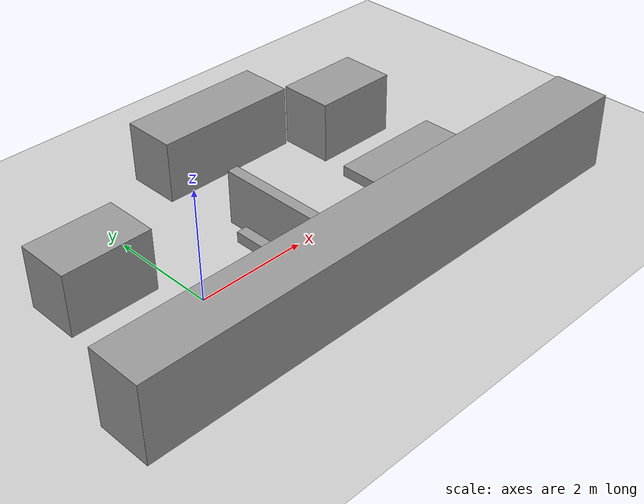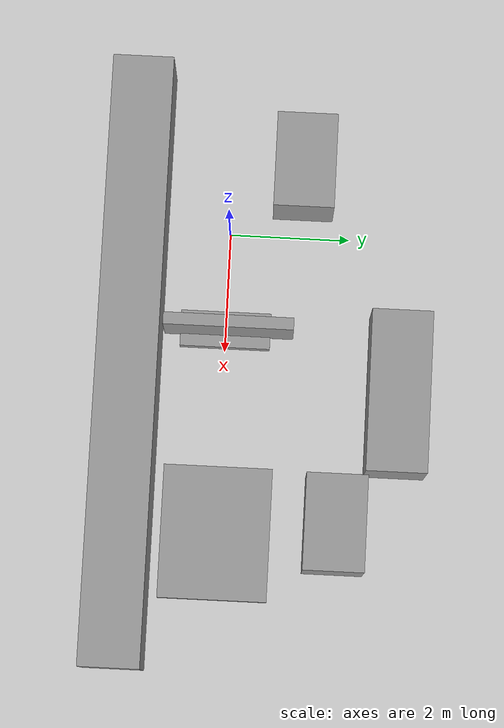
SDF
<?xml version="1.0" ?>
<sdf version="1.4">
  <!-- We use a custom world for the rrbot so that the camera angle is launched correctly -->

  <world name="default">

  <gravity>0 0 -9.81</gravity>

  <model name="ground_plane">
    <static>true</static>
    <link name="link">
      <collision name="collision">
        <geometry>
          <plane>
            <normal>0 0 1</normal>
            <size>100 100</size>
          </plane>
        </geometry>
        <surface>
          <friction>
            <ode>
              <mu>1</mu>
              <mu2>1</mu2>
            </ode>
          </friction>
        </surface>
      </collision>
      <visual name="visual">
        <cast_shadows>false</cast_shadows>
        <geometry>
          <plane>
            <normal>0 0 1</normal>
            <size>100 100</size>
          </plane>
        </geometry>
        <material>
          <script>
            <uri>file://media/materials/scripts/gazebo.material</uri>
            <name>Gazebo/Grey</name>
          </script>
        </material>
      </visual>
    </link>
  </model>

    <model name='obstacleFront_Brick1'>
      <pose frame=''>1.45 0 0.1 0 0 0</pose>
      <link name='link'>
        <inertial>
          <mass>100</mass>
          <inertia>
            <ixx>16.6667</ixx>
            <ixy>0</ixy>
            <ixz>0</ixz>
            <iyy>16.6667</iyy>
            <iyz>0</iyz>
            <izz>16.6667</izz>
          </inertia>
          <pose frame=''>0 0 0 0 0 0</pose>
        </inertial>
        <collision name='collision'>
          <geometry>
            <box>
              <size>0.2 1.5 0.2</size>
            </box>
          </geometry>
          <max_contacts>10</max_contacts>
          <surface>
            <contact>
              <ode/>
            </contact>
            <bounce/>
            <friction>
              <torsional>
                <ode/>
              </torsional>
              <ode/>
            </friction>
          </surface>
        </collision>
        <visual name='visual'>
          <geometry>
            <box>
              <size>0.2 1.5 0.2</size>
            </box>
          </geometry>
          <material>
            <script>
              <name>Gazebo/Grey</name>
              <uri>file://media/materials/scripts/gazebo.material</uri>
            </script>
          </material>
        </visual>
        <self_collide>0</self_collide>
        <enable_wind>0</enable_wind>
        <kinematic>0</kinematic>
      </link>
    </model>

    <model name='obstacleFront_Brick2'>
      <pose frame=''>1.85 0 0.1 0 0 0</pose>
      <link name='link'>
        <inertial>
          <mass>100</mass>
          <inertia>
            <ixx>16.6667</ixx>
            <ixy>0</ixy>
            <ixz>0</ixz>
            <iyy>16.6667</iyy>
            <iyz>0</iyz>
            <izz>16.6667</izz>
          </inertia>
          <pose frame=''>0 0 0 0 0 0</pose>
        </inertial>
        <collision name='collision'>
          <geometry>
            <box>
              <size>0.2 1.5 0.2</size>
            </box>
          </geometry>
          <max_contacts>10</max_contacts>
          <surface>
            <contact>
              <ode/>
            </contact>
            <bounce/>
            <friction>
              <torsional>
                <ode/>
              </torsional>
              <ode/>
            </friction>
          </surface>
        </collision>
        <visual name='visual'>
          <geometry>
            <box>
              <size>0.2 1.5 0.2</size>
            </box>
          </geometry>
          <material>
            <script>
              <name>Gazebo/Grey</name>
              <uri>file://media/materials/scripts/gazebo.material</uri>
            </script>
          </material>
        </visual>
        <self_collide>0</self_collide>
        <enable_wind>0</enable_wind>
        <kinematic>0</kinematic>
      </link>
    </model>

    <model name='obstacleFront'>
      <pose frame=''>1.65 0.06 0.6 0 0 0</pose>
      <link name='link'>
        <inertial>
          <mass>100</mass>
          <inertia>
            <ixx>16.6667</ixx>
            <ixy>0</ixy>
            <ixz>0</ixz>
            <iyy>16.6667</iyy>
            <iyz>0</iyz>
            <izz>16.6667</izz>
          </inertia>
          <pose frame=''>0 0 0 0 0 0</pose>
        </inertial>
        <collision name='collision'>
          <geometry>
            <box>
              <size>0.19 2.14 1.2</size>
            </box>
          </geometry>
          <max_contacts>10</max_contacts>
          <surface>
            <contact>
              <ode/>
            </contact>
            <bounce/>
            <friction>
              <torsional>
                <ode/>
              </torsional>
              <ode/>
            </friction>
          </surface>
        </collision>
        <visual name='visual'>
          <geometry>
            <box>
              <size>0.2 2.14 1.0</size>
            </box>
          </geometry>
          <material>
            <script>
              <name>Gazebo/Grey</name>
              <uri>file://media/materials/scripts/gazebo.material</uri>
            </script>
          </material>
        </visual>
        <self_collide>0</self_collide>
        <enable_wind>0</enable_wind>
        <kinematic>0</kinematic>
      </link>
    </model>

    <model name='platform'>
      <pose frame=''>5.05 0 0.1 0 0 0</pose>
      <link name='link'>
        <inertial>
          <mass>100</mass>
          <inertia>
            <ixx>16.6667</ixx>
            <ixy>0</ixy>
            <ixz>0</ixz>
            <iyy>16.6667</iyy>
            <iyz>0</iyz>
            <izz>16.6667</izz>
          </inertia>
          <pose frame=''>0 0 0 0 0 0</pose>
        </inertial>
        <collision name='collision'>
          <geometry>
            <box>
              <size>2.2 1.8 0.2</size>
            </box>
          </geometry>
          <max_contacts>10</max_contacts>
          <surface>
            <contact>
              <ode/>
            </contact>
            <bounce/>
            <friction>
              <torsional>
                <ode/>
              </torsional>
              <ode/>
            </friction>
          </surface>
        </collision>
        <visual name='visual'>
          <geometry>
            <box>
              <size>2.2 1.8 0.2</size>
            </box>
          </geometry>
          <material>
            <script>
              <name>Gazebo/Grey</name>
              <uri>file://media/materials/scripts/gazebo.material</uri>
            </script>
          </material>
        </visual>
        <self_collide>0</self_collide>
        <enable_wind>0</enable_wind>
        <kinematic>0</kinematic>
      </link>
    </model>

    <model name='wall1'>
      <pose frame=''>2.35 -1.55 0.7 0 0 0</pose>
      <link name='link'>
        <inertial>
          <mass>100</mass>
          <inertia>
            <ixx>16.6667</ixx>
            <ixy>0</ixy>
            <ixz>0</ixz>
            <iyy>16.6667</iyy>
            <iyz>0</iyz>
            <izz>16.6667</izz>
          </inertia>
          <pose frame=''>0 0 0 0 0 0</pose>
        </inertial>
        <collision name='collision'>
          <geometry>
            <box>
              <size>10 1 1.4</size>
            </box>
          </geometry>
          <max_contacts>10</max_contacts>
          <surface>
            <contact>
              <ode/>
            </contact>
            <bounce/>
            <friction>
              <torsional>
                <ode/>
              </torsional>
              <ode/>
            </friction>
          </surface>
        </collision>
        <visual name='visual'>
          <geometry>
            <box>
              <size>10 1 1.4</size>
            </box>
          </geometry>
          <material>
            <script>
              <name>Gazebo/Grey</name>
              <uri>file://media/materials/scripts/gazebo.material</uri>
            </script>
          </material>
        </visual>
        <self_collide>0</self_collide>
        <enable_wind>0</enable_wind>
        <kinematic>0</kinematic>
      </link>
    </model>

    <model name='sideObj'>
      <pose frame=''>2.66 2.9 0.565 0 0 0</pose>
      <link name='link'>
        <inertial>
          <mass>100</mass>
          <inertia>
            <ixx>16.6667</ixx>
            <ixy>0</ixy>
            <ixz>0</ixz>
            <iyy>16.6667</iyy>
            <iyz>0</iyz>
            <izz>16.6667</izz>
          </inertia>
          <pose frame=''>0 0 0 0 0 0</pose>
        </inertial>
        <collision name='collision'>
          <geometry>
            <box>
              <size>2.66 1 1.13</size>
            </box>
          </geometry>
          <max_contacts>10</max_contacts>
          <surface>
            <contact>
              <ode/>
            </contact>
            <bounce/>
            <friction>
              <torsional>
                <ode/>
              </torsional>
              <ode/>
            </friction>
          </surface>
        </collision>
        <visual name='visual'>
          <geometry>
            <box>
              <size>2.66 1 1.13</size>
            </box>
          </geometry>
          <material>
            <script>
              <name>Gazebo/Grey</name>
              <uri>file://media/materials/scripts/gazebo.material</uri>
            </script>
          </material>
        </visual>
        <self_collide>0</self_collide>
        <enable_wind>0</enable_wind>
        <kinematic>0</kinematic>
      </link>
    </model>

    <model name='sideObj2'>
      <pose frame=''>4.85 1.95 0.57 0 0 0</pose>
      <link name='link'>
        <inertial>
          <mass>100</mass>
          <inertia>
            <ixx>16.6667</ixx>
            <ixy>0</ixy>
            <ixz>0</ixz>
            <iyy>16.6667</iyy>
            <iyz>0</iyz>
            <izz>16.6667</izz>
          </inertia>
          <pose frame=''>0 0 0 0 0 0</pose>
        </inertial>
        <collision name='collision'>
          <geometry>
            <box>
              <size>1.58 1 1.13</size>
            </box>
          </geometry>
          <max_contacts>10</max_contacts>
          <surface>
            <contact>
              <ode/>
            </contact>
            <bounce/>
            <friction>
              <torsional>
                <ode/>
              </torsional>
              <ode/>
            </friction>
          </surface>
        </collision>
        <visual name='visual'>
          <geometry>
            <box>
              <size>1.58 1 1.13</size>
            </box>
          </geometry>
          <material>
            <script>
              <name>Gazebo/Grey</name>
              <uri>file://media/materials/scripts/gazebo.material</uri>
            </script>
          </material>
        </visual>
        <self_collide>0</self_collide>
        <enable_wind>0</enable_wind>
        <kinematic>0</kinematic>
      </link>
    </model>

    <model name='sideObj3'>
      <pose frame=''>-1.1 1.2 0.57 0 0 0</pose>
      <link name='link'>
        <inertial>
          <mass>100</mass>
          <inertia>
            <ixx>16.6667</ixx>
            <ixy>0</ixy>
            <ixz>0</ixz>
            <iyy>16.6667</iyy>
            <iyz>0</iyz>
            <izz>16.6667</izz>
          </inertia>
          <pose frame=''>0 0 0 0 0 0</pose>
        </inertial>
        <collision name='collision'>
          <geometry>
            <box>
              <size>1.58 1 1.13</size>
            </box>
          </geometry>
          <max_contacts>10</max_contacts>
          <surface>
            <contact>
              <ode/>
            </contact>
            <bounce/>
            <friction>
              <torsional>
                <ode/>
              </torsional>
              <ode/>
            </friction>
          </surface>
        </collision>
        <visual name='visual'>
          <geometry>
            <box>
              <size>1.58 1 1.13</size>
            </box>
          </geometry>
          <material>
            <script>
              <name>Gazebo/Grey</name>
              <uri>file://media/materials/scripts/gazebo.material</uri>
            </script>
          </material>
        </visual>
        <self_collide>0</self_collide>
        <enable_wind>0</enable_wind>
        <kinematic>0</kinematic>
      </link>
    </model>

    <!-- Global light source -->
    <include>
      <uri>model://sun</uri>
    </include>

    <!-- Focus camera on tall pendulum -->
    <gui fullscreen='0'>
      <camera name='user_camera'>
        <pose>4.927360 -4.376610 3.740080 0.000000 0.275643 2.356190</pose>
        <view_controller>orbit</view_controller>
      </camera>
    </gui>

    <physics name='update_rate' default='0' type='ode'>
      <real_time_update_rate>4000</real_time_update_rate>
      <max_step_size>0.00025</max_step_size>
      <max_contacts>5</max_contacts>
      <bullet>
        <solver>
          <iters>100</iters>
          <sor>1.55</sor>
          <type>sequential_impulse</type>
        </solver>
        <constraints>
          <contact_surface_layer>0.2</contact_surface_layer>
          <cfm>0.005</cfm>
          <erp>0.2</erp>
          <split_impulse>1</split_impulse>
          <split_impulse_penetration_threshold>-0.01</split_impulse_penetration_threshold>
        </constraints>
      </bullet>
      <ode>
        <solver>
          <iters>50</iters>
          <sor>1.2</sor>
          <type>quick</type>
          <use_dynamic_moi_rescaling>0</use_dynamic_moi_rescaling>
        </solver>
        <constraints>
          <contact_surface_layer>0.0002</contact_surface_layer>
          <contact_max_correcting_vel>500</contact_max_correcting_vel>
          <cfm>1e-06</cfm>
          <erp>0.3</erp>
        </constraints>
      </ode>
      <real_time_factor>1</real_time_factor>
    </physics>
  </world>
</sdf>
